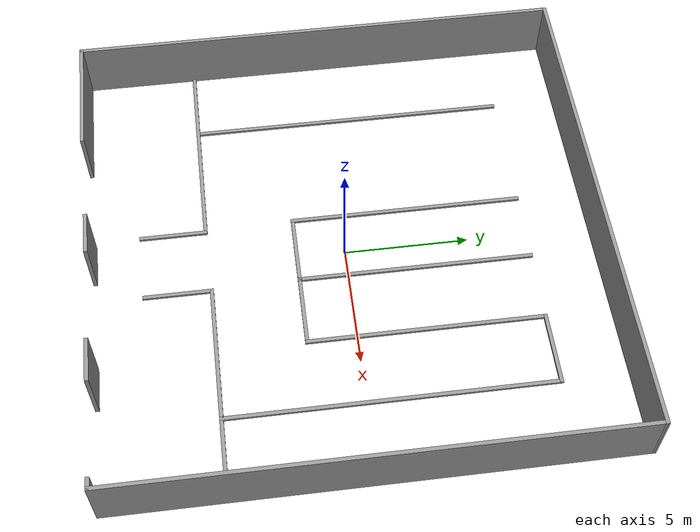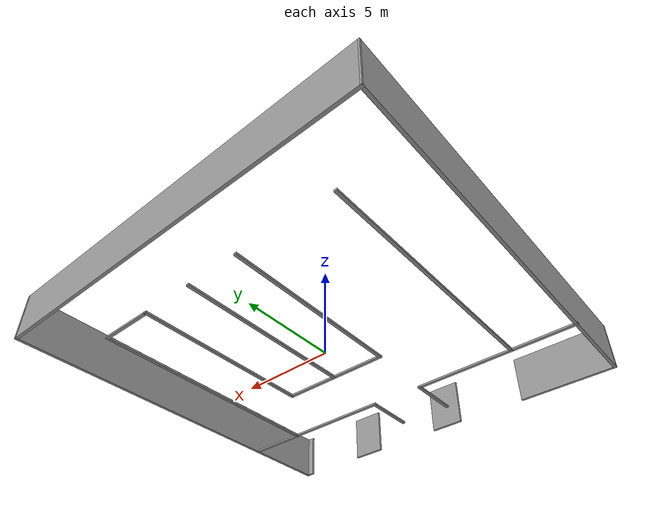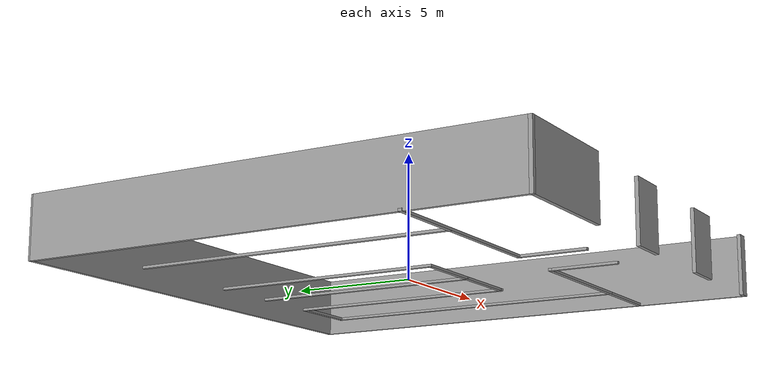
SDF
<?xml version='1.0'?>
<sdf version='1.6'>
  <model name='erl_maze'>
    <pose frame=''>0.00741 0.001548 0 0 -0 0</pose>
    <link name='Wall_12'>
      <collision name='Wall_12_Collision'>
        <geometry>
          <box>
            <size>0.5 0.15 2.5</size>
          </box>
        </geometry>
        <pose frame=''>0 0 1.25 0 -0 0</pose>
      </collision>
      <visual name='Wall_12_Visual'>
        <pose frame=''>0 0 1.25 0 -0 0</pose>
        <geometry>
          <box>
            <size>0.5 0.15 2.5</size>
          </box>
        </geometry>
        <material>
          <script>
            <uri>file://media/materials/scripts/gazebo.material</uri>
            <name>Gazebo/Grey</name>
          </script>
          <ambient>1 1 1 1</ambient>
        </material>
        <meta>
          <layer>0</layer>
        </meta>
      </visual>
      <pose frame=''>9.81417 -10.0047 0 0 -0 3.14159</pose>
    </link>
    <link name='Wall_14'>
      <collision name='Wall_14_Collision'>
        <geometry>
          <box>
            <size>20.25 0.15 2.5</size>
          </box>
        </geometry>
        <pose frame=''>0 0 1.25 0 -0 0</pose>
      </collision>
      <visual name='Wall_14_Visual'>
        <pose frame=''>0 0 1.25 0 -0 0</pose>
        <geometry>
          <box>
            <size>20.25 0.15 2.5</size>
          </box>
        </geometry>
        <material>
          <script>
            <uri>file://media/materials/scripts/gazebo.material</uri>
            <name>Gazebo/Grey</name>
          </script>
          <ambient>1 1 1 1</ambient>
        </material>
        <meta>
          <layer>0</layer>
        </meta>
      </visual>
      <pose frame=''>9.98917 0.045305 0 0 -0 1.5708</pose>
    </link>
    <link name='Wall_15'>
      <collision name='Wall_15_Collision'>
        <geometry>
          <box>
            <size>20.1216 0.15 2.5</size>
          </box>
        </geometry>
        <pose frame=''>0 0 1.25 0 -0 0</pose>
      </collision>
      <visual name='Wall_15_Visual'>
        <pose frame=''>0 0 1.25 0 -0 0</pose>
        <geometry>
          <box>
            <size>20.1216 0.15 2.5</size>
          </box>
        </geometry>
        <material>
          <script>
            <uri>file://media/materials/scripts/gazebo.material</uri>
            <name>Gazebo/Grey</name>
          </script>
          <ambient>1 1 1 1</ambient>
        </material>
        <meta>
          <layer>0</layer>
        </meta>
      </visual>
      <pose frame=''>0.00343 10.063 0 0 -0 -3.13835</pose>
    </link>
    <link name='Wall_17'>
      <collision name='Wall_17_Collision'>
        <geometry>
          <box>
            <size>8.5 0.15 0.1</size>
          </box>
        </geometry>
        <pose frame=''>0 0 0.05 0 -0 0</pose>
      </collision>
      <visual name='Wall_17_Visual'>
        <pose frame=''>0 0 0.05 0 -0 0</pose>
        <geometry>
          <box>
            <size>8.5 0.15 0.1</size>
          </box>
        </geometry>
        <material>
          <script>
            <uri>file://media/materials/scripts/gazebo.material</uri>
            <name>Gazebo/Grey</name>
          </script>
          <ambient>1 1 1 1</ambient>
        </material>
        <meta>
          <layer>0</layer>
        </meta>
      </visual>
      <pose frame=''>-5.81441 -5.52855 0 0 -0 0</pose>
    </link>
    <link name='Wall_18'>
      <collision name='Wall_18_Collision'>
        <geometry>
          <box>
            <size>2.75 0.15 0.1</size>
          </box>
        </geometry>
        <pose frame=''>0 0 0.05 0 -0 0</pose>
      </collision>
      <visual name='Wall_18_Visual'>
        <pose frame=''>0 0 0.05 0 -0 0</pose>
        <geometry>
          <box>
            <size>2.75 0.15 0.1</size>
          </box>
        </geometry>
        <material>
          <script>
            <uri>file://media/materials/scripts/gazebo.material</uri>
            <name>Gazebo/Grey</name>
          </script>
          <ambient>1 1 1 1</ambient>
        </material>
        <meta>
          <layer>0</layer>
        </meta>
      </visual>
      <pose frame=''>-1.63941 -6.82855 0 0 -0 -1.5708</pose>
    </link>
    <link name='Wall_2'>
      <collision name='Wall_2_Collision'>
        <geometry>
          <box>
            <size>20.2762 0.15 2.5</size>
          </box>
        </geometry>
        <pose frame=''>0 0 1.25 0 -0 0</pose>
      </collision>
      <visual name='Wall_2_Visual'>
        <pose frame=''>0 0 1.25 0 -0 0</pose>
        <geometry>
          <box>
            <size>20.2762 0.15 2.5</size>
          </box>
        </geometry>
        <material>
          <script>
            <uri>file://media/materials/scripts/gazebo.material</uri>
            <name>Gazebo/Grey</name>
          </script>
          <ambient>1 1 1 1</ambient>
        </material>
        <meta>
          <layer>0</layer>
        </meta>
      </visual>
      <pose frame=''>-9.98236 -0.03246 0 0 -0 -1.5708</pose>
    </link>
    <link name='Wall_20'>
      <collision name='Wall_20_Collision'>
        <geometry>
          <box>
            <size>13 0.15 0.1</size>
          </box>
        </geometry>
        <pose frame=''>0 0 0.05 0 -0 0</pose>
      </collision>
      <visual name='Wall_20_Visual'>
        <pose frame=''>0 0 0.05 0 -0 0</pose>
        <geometry>
          <box>
            <size>13 0.15 0.1</size>
          </box>
        </geometry>
        <material>
          <script>
            <uri>file://media/materials/scripts/gazebo.material</uri>
            <name>Gazebo/Grey</name>
          </script>
          <ambient>1 1 1 1</ambient>
        </material>
        <meta>
          <layer>0</layer>
        </meta>
      </visual>
      <pose frame=''>-6.79741 0.922452 0 0 -0 1.5708</pose>
    </link>
    <link name='Wall_22'>
      <collision name='Wall_22_Collision'>
        <geometry>
          <box>
            <size>9.5 0.15 0.1</size>
          </box>
        </geometry>
        <pose frame=''>0 0 0.05 0 -0 0</pose>
      </collision>
      <visual name='Wall_22_Visual'>
        <pose frame=''>0 0 0.05 0 -0 0</pose>
        <geometry>
          <box>
            <size>9.5 0.15 0.1</size>
          </box>
        </geometry>
        <material>
          <script>
            <uri>file://media/materials/scripts/gazebo.material</uri>
            <name>Gazebo/Grey</name>
          </script>
          <ambient>1 1 1 1</ambient>
        </material>
        <meta>
          <layer>0</layer>
        </meta>
      </visual>
      <pose frame=''>-1.76941 2.72345 0 0 -0 -1.5708</pose>
    </link>
    <link name='Wall_24'>
      <collision name='Wall_24_Collision'>
        <geometry>
          <box>
            <size>3 0.15 0.1</size>
          </box>
        </geometry>
        <pose frame=''>0 0 0.05 0 -0 0</pose>
      </collision>
      <visual name='Wall_24_Visual'>
        <pose frame=''>0 0 0.05 0 -0 0</pose>
        <geometry>
          <box>
            <size>3 0.15 0.1</size>
          </box>
        </geometry>
        <material>
          <script>
            <uri>file://media/materials/scripts/gazebo.material</uri>
            <name>Gazebo/Grey</name>
          </script>
          <ambient>1 1 1 1</ambient>
        </material>
        <meta>
          <layer>0</layer>
        </meta>
      </visual>
      <pose frame=''>-0.34441 -1.95155 0 0 -0 0</pose>
    </link>
    <link name='Wall_25'>
      <collision name='Wall_25_Collision'>
        <geometry>
          <box>
            <size>9.5 0.15 0.1</size>
          </box>
        </geometry>
        <pose frame=''>0 0 0.05 0 -0 0</pose>
      </collision>
      <visual name='Wall_25_Visual'>
        <pose frame=''>0 0 0.05 0 -0 0</pose>
        <geometry>
          <box>
            <size>9.5 0.15 0.1</size>
          </box>
        </geometry>
        <material>
          <script>
            <uri>file://media/materials/scripts/gazebo.material</uri>
            <name>Gazebo/Grey</name>
          </script>
          <ambient>1 1 1 1</ambient>
        </material>
        <meta>
          <layer>0</layer>
        </meta>
      </visual>
      <pose frame=''>1.08059 2.72345 0 0 -0 1.5708</pose>
    </link>
    <link name='Wall_27'>
      <collision name='Wall_27_Collision'>
        <geometry>
          <box>
            <size>3 0.15 0.1</size>
          </box>
        </geometry>
        <pose frame=''>0 0 0.05 0 -0 0</pose>
      </collision>
      <visual name='Wall_27_Visual'>
        <pose frame=''>0 0 0.05 0 -0 0</pose>
        <geometry>
          <box>
            <size>3 0.15 0.1</size>
          </box>
        </geometry>
        <material>
          <script>
            <uri>file://media/materials/scripts/gazebo.material</uri>
            <name>Gazebo/Grey</name>
          </script>
          <ambient>1 1 1 1</ambient>
        </material>
        <meta>
          <layer>0</layer>
        </meta>
      </visual>
      <pose frame=''>2.50559 -1.95155 0 0 -0 0</pose>
    </link>
    <link name='Wall_28'>
      <collision name='Wall_28_Collision'>
        <geometry>
          <box>
            <size>9.5 0.15 0.1</size>
          </box>
        </geometry>
        <pose frame=''>0 0 0.05 0 -0 0</pose>
      </collision>
      <visual name='Wall_28_Visual'>
        <pose frame=''>0 0 0.05 0 -0 0</pose>
        <geometry>
          <box>
            <size>9.5 0.15 0.1</size>
          </box>
        </geometry>
        <material>
          <script>
            <uri>file://media/materials/scripts/gazebo.material</uri>
            <name>Gazebo/Grey</name>
          </script>
          <ambient>1 1 1 1</ambient>
        </material>
        <meta>
          <layer>0</layer>
        </meta>
      </visual>
      <pose frame=''>3.93059 2.72345 0 0 -0 1.5708</pose>
    </link>
    <link name='Wall_29'>
      <collision name='Wall_29_Collision'>
        <geometry>
          <box>
            <size>3 0.15 0.1</size>
          </box>
        </geometry>
        <pose frame=''>0 0 0.05 0 -0 0</pose>
      </collision>
      <visual name='Wall_29_Visual'>
        <pose frame=''>0 0 0.05 0 -0 0</pose>
        <geometry>
          <box>
            <size>3 0.15 0.1</size>
          </box>
        </geometry>
        <material>
          <script>
            <uri>file://media/materials/scripts/gazebo.material</uri>
            <name>Gazebo/Grey</name>
          </script>
          <ambient>1 1 1 1</ambient>
        </material>
        <meta>
          <layer>0</layer>
        </meta>
      </visual>
      <pose frame=''>5.35559 7.39845 0 0 -0 0</pose>
    </link>
    <link name='Wall_3'>
      <collision name='Wall_3_Collision'>
        <geometry>
          <box>
            <size>5 0.15 2.5</size>
          </box>
        </geometry>
        <pose frame=''>0 0 1.25 0 -0 0</pose>
      </collision>
      <visual name='Wall_3_Visual'>
        <pose frame=''>0 0 1.25 0 -0 0</pose>
        <geometry>
          <box>
            <size>5 0.15 2.5</size>
          </box>
        </geometry>
        <material>
          <script>
            <uri>file://media/materials/scripts/gazebo.material</uri>
            <name>Gazebo/Grey</name>
          </script>
          <ambient>1 1 1 1</ambient>
        </material>
        <meta>
          <layer>0</layer>
        </meta>
      </visual>
      <pose frame=''>-7.55741 -10.0955 0 0 -0 0</pose>
    </link>
    <link name='Wall_30'>
      <collision name='Wall_30_Collision'>
        <geometry>
          <box>
            <size>13 0.15 0.1</size>
          </box>
        </geometry>
        <pose frame=''>0 0 0.05 0 -0 0</pose>
      </collision>
      <visual name='Wall_30_Visual'>
        <pose frame=''>0 0 0.05 0 -0 0</pose>
        <geometry>
          <box>
            <size>13 0.15 0.1</size>
          </box>
        </geometry>
        <material>
          <script>
            <uri>file://media/materials/scripts/gazebo.material</uri>
            <name>Gazebo/Grey</name>
          </script>
          <ambient>1 1 1 1</ambient>
        </material>
        <meta>
          <layer>0</layer>
        </meta>
      </visual>
      <pose frame=''>6.78059 0.973452 0 0 -0 -1.5708</pose>
    </link>
    <link name='Wall_31'>
      <collision name='Wall_31_Collision'>
        <geometry>
          <box>
            <size>5.75 0.15 0.1</size>
          </box>
        </geometry>
        <pose frame=''>0 0 0.05 0 -0 0</pose>
      </collision>
      <visual name='Wall_31_Visual'>
        <pose frame=''>0 0 0.05 0 -0 0</pose>
        <geometry>
          <box>
            <size>5.75 0.15 0.1</size>
          </box>
        </geometry>
        <material>
          <script>
            <uri>file://media/materials/scripts/gazebo.material</uri>
            <name>Gazebo/Grey</name>
          </script>
          <ambient>1 1 1 1</ambient>
        </material>
        <meta>
          <layer>0</layer>
        </meta>
      </visual>
      <pose frame=''>3.98059 -5.45155 0 0 -0 3.14159</pose>
    </link>
    <link name='Wall_33'>
      <collision name='Wall_33_Collision'>
        <geometry>
          <box>
            <size>3.25 0.15 0.1</size>
          </box>
        </geometry>
        <pose frame=''>0 0 0.05 0 -0 0</pose>
      </collision>
      <visual name='Wall_33_Visual'>
        <pose frame=''>0 0 0.05 0 -0 0</pose>
        <geometry>
          <box>
            <size>3.25 0.15 0.1</size>
          </box>
        </geometry>
        <material>
          <script>
            <uri>file://media/materials/scripts/gazebo.material</uri>
            <name>Gazebo/Grey</name>
          </script>
          <ambient>1 1 1 1</ambient>
        </material>
        <meta>
          <layer>0</layer>
        </meta>
      </visual>
      <pose frame=''>8.33059 -5.45155 0 0 -0 0</pose>
    </link>
    <link name='Wall_37'>
      <collision name='Wall_37_Collision'>
        <geometry>
          <box>
            <size>2.8 0.15 0.1</size>
          </box>
        </geometry>
        <pose frame=''>0 0 0.05 0 -0 0</pose>
      </collision>
      <visual name='Wall_37_Visual'>
        <pose frame=''>0 0 0.05 0 -0 0</pose>
        <geometry>
          <box>
            <size>2.8 0.15 0.1</size>
          </box>
        </geometry>
        <material>
          <script>
            <uri>file://media/materials/scripts/gazebo.material</uri>
            <name>Gazebo/Grey</name>
          </script>
          <ambient>1 1 1 1</ambient>
        </material>
        <meta>
          <layer>0</layer>
        </meta>
      </visual>
      <pose frame=''>1.18059 -6.77655 0 0 -0 -1.5708</pose>
    </link>
    <link name='Wall_5'>
      <collision name='Wall_5_Collision'>
        <geometry>
          <box>
            <size>1.75 0.15 2.5</size>
          </box>
        </geometry>
        <pose frame=''>0 0 1.25 0 -0 0</pose>
      </collision>
      <visual name='Wall_5_Visual'>
        <pose frame=''>0 0 1.25 0 -0 0</pose>
        <geometry>
          <box>
            <size>1.75 0.15 2.5</size>
          </box>
        </geometry>
        <material>
          <script>
            <uri>file://media/materials/scripts/gazebo.material</uri>
            <name>Gazebo/Grey</name>
          </script>
          <ambient>1 1 1 1</ambient>
        </material>
        <meta>
          <layer>0</layer>
        </meta>
      </visual>
      <pose frame=''>-0.52527 -10.006 0 0 -0 0</pose>
    </link>
    <link name='Wall_7'>
      <collision name='Wall_7_Collision'>
        <geometry>
          <box>
            <size>1.75 0.15 2.5</size>
          </box>
        </geometry>
        <pose frame=''>0 0 1.25 0 -0 0</pose>
      </collision>
      <visual name='Wall_7_Visual'>
        <pose frame=''>0 0 1.25 0 -0 0</pose>
        <geometry>
          <box>
            <size>1.75 0.15 2.5</size>
          </box>
        </geometry>
        <material>
          <script>
            <uri>file://media/materials/scripts/gazebo.material</uri>
            <name>Gazebo/Grey</name>
          </script>
          <ambient>1 1 1 1</ambient>
        </material>
        <meta>
          <layer>0</layer>
        </meta>
      </visual>
      <pose frame=''>5.01156 -10.006 0 0 -0 0</pose>
    </link>
    <static>1</static>
  </model>
</sdf>
